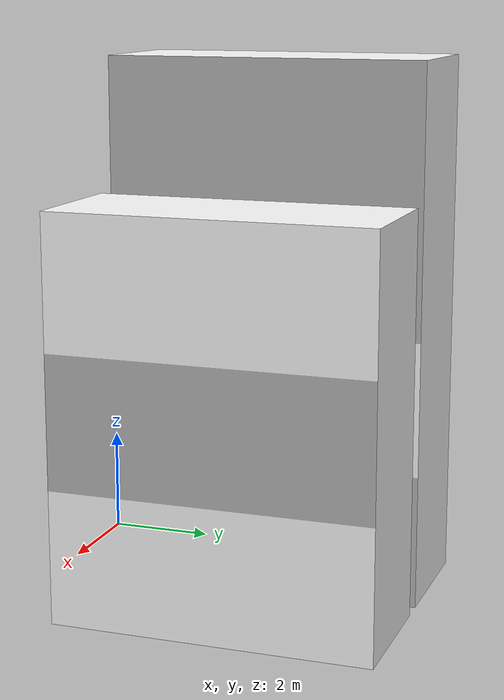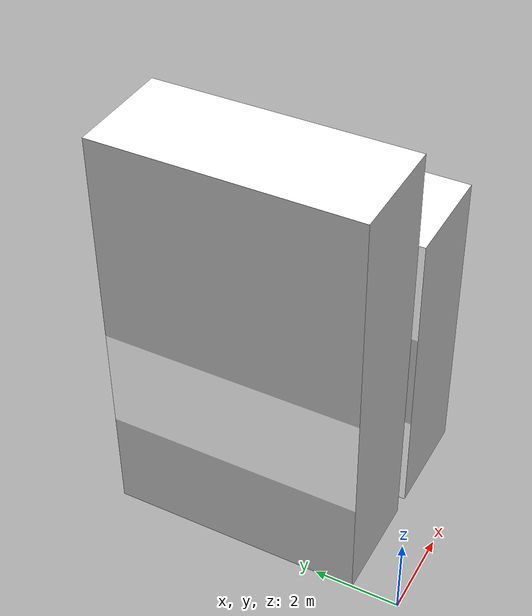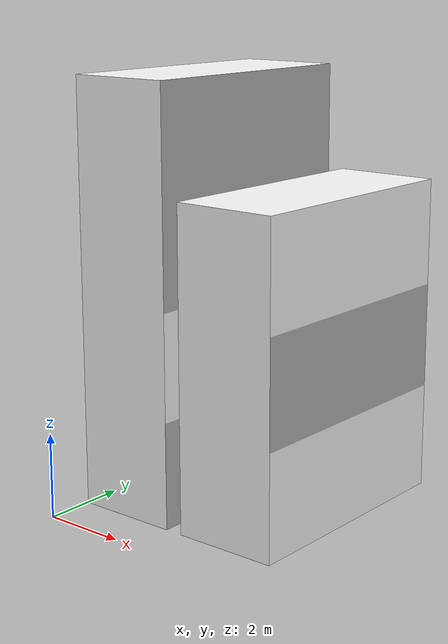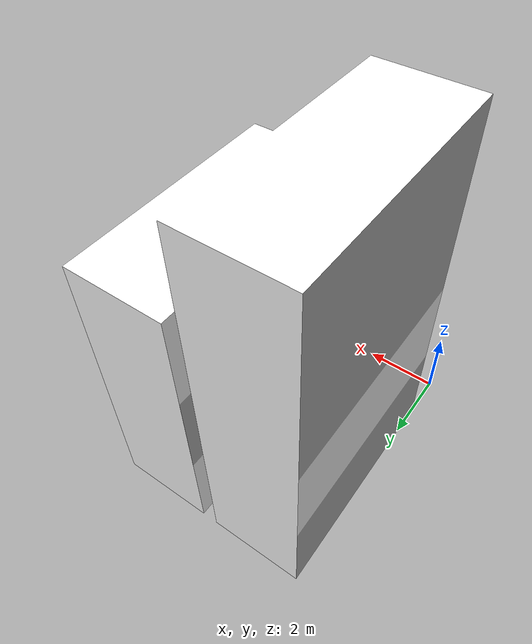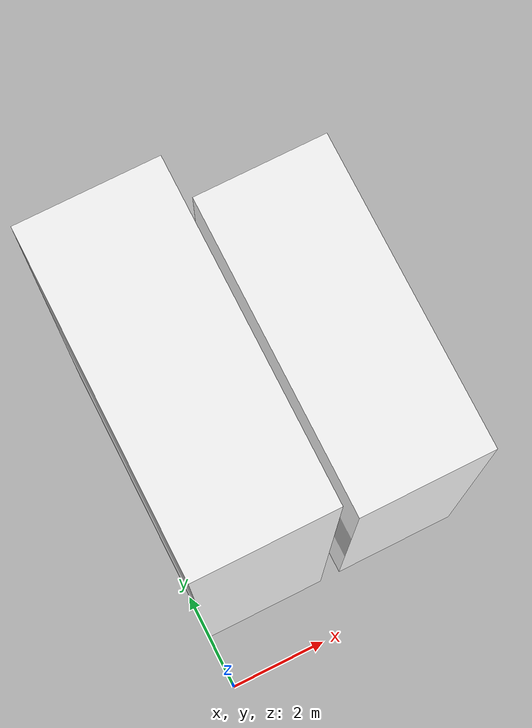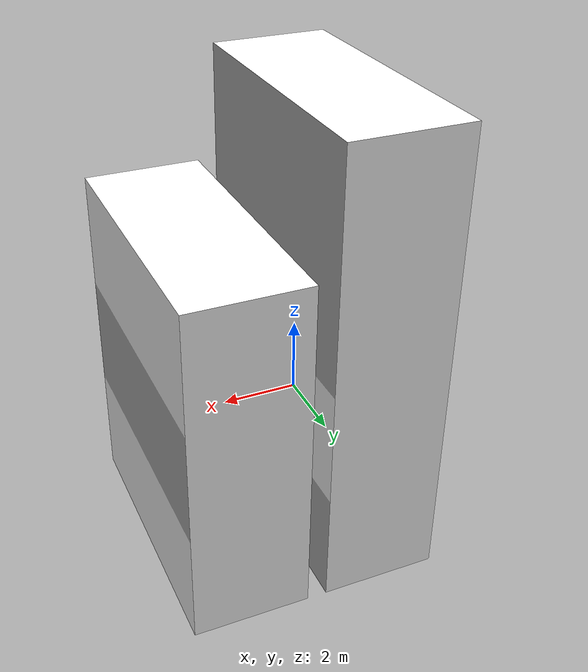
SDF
<?xml version='1.0'?>
<sdf version='1.4'>
  <model name="container-multi-stack">
        <static>true</static>
   <link name='chassis'>
            <pose>0 0 0 0 0 0</pose>
            <collision name='collision'>
              <geometry>
                 <mesh>
            <uri>model://container-multi-stack/container-multi-stack.dae</uri>
          </mesh>
              </geometry>
            </collision>

            <visual name='visual'>
              <geometry>
                <mesh>
                  <uri>model://container-multi-stack/container-multi-stack.dae</uri>
                </mesh>
              </geometry>
            </visual>
          </link>
  </model>
</sdf>
